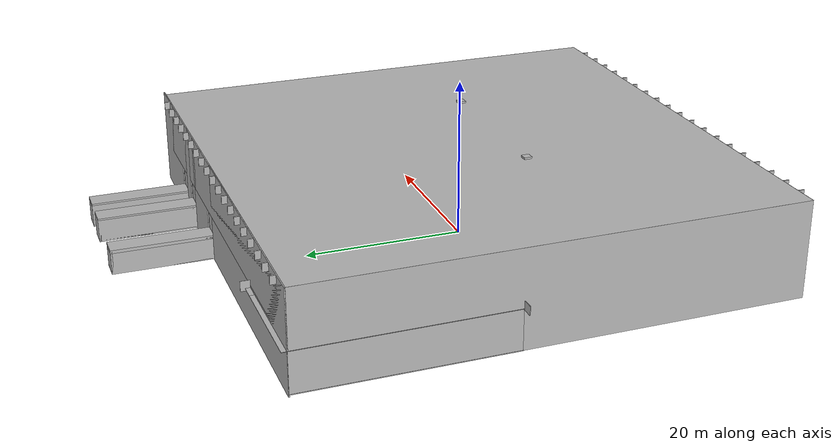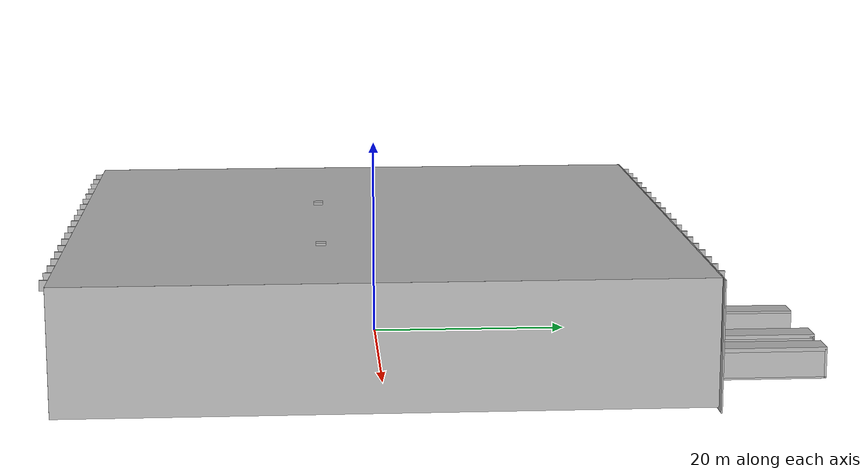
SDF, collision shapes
<?xml version="1.0" ?>
<sdf version="1.6">
    <model name="Distribution_Warehouse">
        <link name="base_link">
            <visual name="base_visual">
                <geometry>
                    <mesh>
                        <uri>base_visual.obj</uri>
                    </mesh>
                </geometry>
            </visual>
            <collision name="cube (5)001_collider_box">
                <pose>13.67 -5.68 5.929999 0.0 0.0 0.0</pose>
                <geometry>
                    <box>
                        <size>1.0 1.0 13.01</size>
                    </box>
                </geometry>
            </collision>
            <collision name="cube (5)_collider_box">
                <pose>-7.57 -5.68 5.929999 0.0 0.0 0.0</pose>
                <geometry>
                    <box>
                        <size>1.0 1.0 13.01</size>
                    </box>
                </geometry>
            </collision>
            <collision name="cube (1)_collider_box">
                <pose>-24.0 17.618946 2.510651 0.0 0.0 0.0</pose>
                <geometry>
                    <box>
                        <size>13.049801 25.872377 5.021302</size>
                    </box>
                </geometry>
            </collision>
            <collision name="cube (4)001_collider_box">
                <pose>-23.040001 4.776191 2.1 0.0 0.0 0.0</pose>
                <geometry>
                    <box>
                        <size>4.705098 0.251252 1.979337</size>
                    </box>
                </geometry>
            </collision>
            <collision name="cube (4)003_collider_box">
                <pose>-27.151514 4.776191 2.1 0.0 0.0 0.0</pose>
                <geometry>
                    <box>
                        <size>1.640517 0.251252 1.979337</size>
                    </box>
                </geometry>
            </collision>
            <collision name="frame_hp001_collider_box">
                <pose>-19.563 4.649602 1.133148 0.0 0.0 0.0</pose>
                <geometry>
                    <box>
                        <size>0.971092 0.093134 2.169982</size>
                    </box>
                </geometry>
            </collision>
            <collision name="cube (1)001_collider_box">
                <pose>-24.0 17.618946 0.043774 0.0 0.0 0.0</pose>
                <geometry>
                    <box>
                        <size>13.106369 25.928946 0.087549</size>
                    </box>
                </geometry>
            </collision>
            <collision name="frame_hp_collider_box">
                <pose>-17.461601 20.076 1.133148 0.0 0.0 0.0</pose>
                <geometry>
                    <box>
                        <size>0.093134 0.971092 2.169983</size>
                    </box>
                </geometry>
            </collision>
            <collision name="cube (4)005_collider_box">
                <pose>-17.563911 24.582869 2.1 0.0 0.0 0.0</pose>
                <geometry>
                    <box>
                        <size>0.251251 4.705097 1.979337</size>
                    </box>
                </geometry>
            </collision>
            <collision name="cube (5)002_collider_box">
                <pose>-15.980897 15.356428 2.327658 0.0 0.0 0.0</pose>
                <geometry>
                    <box>
                        <size>0.693814 0.693814 5.282052</size>
                    </box>
                </geometry>
            </collision>
            <collision name="cube (5)003_collider_box">
                <pose>-15.980897 27.471577 2.327658 0.0 0.0 0.0</pose>
                <geometry>
                    <box>
                        <size>0.693814 0.693814 5.282052</size>
                    </box>
                </geometry>
            </collision>
            <collision name="rafters_collider_box">
                <pose>27.432001 5.9e-05 11.675549 0.0 0.0 0.0</pose>
                <geometry>
                    <box>
                        <size>0.165783 62.56284 0.99057</size>
                    </box>
                </geometry>
            </collision>
            <collision name="rafters001_collider_box">
                <pose>-27.431999 3.5e-05 11.675549 0.0 0.0 0.0</pose>
                <geometry>
                    <box>
                        <size>0.165785 62.562836 0.99057</size>
                    </box>
                </geometry>
            </collision>
            <collision name="rafters002_collider_box">
                <pose>-24.383999 3.6e-05 11.675549 0.0 0.0 0.0</pose>
                <geometry>
                    <box>
                        <size>0.165783 62.56284 0.99057</size>
                    </box>
                </geometry>
            </collision>
            <collision name="rafters003_collider_box">
                <pose>-21.335999 3.8e-05 11.675549 0.0 0.0 0.0</pose>
                <geometry>
                    <box>
                        <size>0.165785 62.56284 0.99057</size>
                    </box>
                </geometry>
            </collision>
            <collision name="rafters004_collider_box">
                <pose>-18.288002 3.6e-05 11.675549 0.0 0.0 0.0</pose>
                <geometry>
                    <box>
                        <size>0.165783 62.562843 0.99057</size>
                    </box>
                </geometry>
            </collision>
            <collision name="rafters005_collider_box">
                <pose>-15.24 3.8e-05 11.675549 0.0 0.0 0.0</pose>
                <geometry>
                    <box>
                        <size>0.165786 62.562843 0.99057</size>
                    </box>
                </geometry>
            </collision>
            <collision name="rafters006_collider_box">
                <pose>-12.192001 4e-05 11.675549 0.0 0.0 0.0</pose>
                <geometry>
                    <box>
                        <size>0.165786 62.562843 0.99057</size>
                    </box>
                </geometry>
            </collision>
            <collision name="rafters007_collider_box">
                <pose>-9.143999 4.3e-05 11.675549 0.0 0.0 0.0</pose>
                <geometry>
                    <box>
                        <size>0.165785 62.562836 0.99057</size>
                    </box>
                </geometry>
            </collision>
            <collision name="rafters008_collider_box">
                <pose>-6.096001 4.5e-05 11.675549 0.0 0.0 0.0</pose>
                <geometry>
                    <box>
                        <size>0.165784 62.562836 0.99057</size>
                    </box>
                </geometry>
            </collision>
            <collision name="rafters009_collider_box">
                <pose>-3.048 4.6e-05 11.675549 0.0 0.0 0.0</pose>
                <geometry>
                    <box>
                        <size>0.165785 62.562836 0.99057</size>
                    </box>
                </geometry>
            </collision>
            <collision name="rafters010_collider_box">
                <pose>-1e-06 4.8e-05 11.675549 0.0 0.0 0.0</pose>
                <geometry>
                    <box>
                        <size>0.165784 62.562836 0.99057</size>
                    </box>
                </geometry>
            </collision>
            <collision name="rafters011_collider_box">
                <pose>3.047999 5e-05 11.675549 0.0 0.0 0.0</pose>
                <geometry>
                    <box>
                        <size>0.165785 62.562836 0.99057</size>
                    </box>
                </geometry>
            </collision>
            <collision name="rafters012_collider_box">
                <pose>6.095998 5e-05 11.675549 0.0 0.0 0.0</pose>
                <geometry>
                    <box>
                        <size>0.165784 62.562836 0.99057</size>
                    </box>
                </geometry>
            </collision>
            <collision name="rafters013_collider_box">
                <pose>9.143999 5.1e-05 11.675549 0.0 0.0 0.0</pose>
                <geometry>
                    <box>
                        <size>0.165785 62.562836 0.99057</size>
                    </box>
                </geometry>
            </collision>
            <collision name="rafters014_collider_box">
                <pose>12.191998 5.3e-05 11.675549 0.0 0.0 0.0</pose>
                <geometry>
                    <box>
                        <size>0.165787 62.56284 0.99057</size>
                    </box>
                </geometry>
            </collision>
            <collision name="rafters015_collider_box">
                <pose>15.239998 5.7e-05 11.675549 0.0 0.0 0.0</pose>
                <geometry>
                    <box>
                        <size>0.165786 62.562843 0.99057</size>
                    </box>
                </geometry>
            </collision>
            <collision name="rafters016_collider_box">
                <pose>18.287998 5.9e-05 11.675549 0.0 0.0 0.0</pose>
                <geometry>
                    <box>
                        <size>0.165783 62.562843 0.99057</size>
                    </box>
                </geometry>
            </collision>
            <collision name="rafters017_collider_box">
                <pose>21.335999 5.7e-05 11.675549 0.0 0.0 0.0</pose>
                <geometry>
                    <box>
                        <size>0.165785 62.56284 0.99057</size>
                    </box>
                </geometry>
            </collision>
            <collision name="rafters018_collider_box">
                <pose>24.384001 5.9e-05 11.675549 0.0 0.0 0.0</pose>
                <geometry>
                    <box>
                        <size>0.165783 62.56284 0.99057</size>
                    </box>
                </geometry>
            </collision>
            <collision name="walls001_collider_box.001">
                <pose>30.48 2e-06 6.096 0.0 0.0 0.0</pose>
                <geometry>
                    <box>
                        <size>0.01 60.960003 12.192019</size>
                    </box>
                </geometry>
            </collision>
            <collision name="walls002_collider_box">
                <pose>0.0 -30.479998 6.096009 0.0 0.0 0.0</pose>
                <geometry>
                    <box>
                        <size>60.959999 0.01 12.191999</size>
                    </box>
                </geometry>
            </collision>
            <collision name="walls_collider_box">
                <pose>-30.48 2e-06 6.096 0.0 0.0 0.0</pose>
                <geometry>
                    <box>
                        <size>0.01 60.960003 12.192019</size>
                    </box>
                </geometry>
            </collision>
            <collision name="slidingdoor 5485_collider_box">
                <pose>-0.000529 30.067745 3.631921 0.0 0.0 0.0</pose>
                <geometry>
                    <box>
                        <size>2.615615 0.800793 0.85331</size>
                    </box>
                </geometry>
            </collision>
            <collision name="slidingdoor 5482_collider_box">
                <pose>1.19452 30.403812 2.923347 0.0 0.0 0.0</pose>
                <geometry>
                    <box>
                        <size>0.13896 0.171846 5.852485</size>
                    </box>
                </geometry>
            </collision>
            <collision name="slidingdoor 5482_collider_box.001">
                <pose>-1.196062 30.403812 2.923347 0.0 0.0 0.0</pose>
                <geometry>
                    <box>
                        <size>0.13896 0.171846 5.852485</size>
                    </box>
                </geometry>
            </collision>
            <collision name="slidingdoor 5482_collider_box.002">
                <pose>0.0 30.444313 1.387489 0.0 0.0 0.0</pose>
                <geometry>
                    <box>
                        <size>2.4384 0.062555 2.774978</size>
                    </box>
                </geometry>
            </collision>
            <collision name="slidingdoor 5485_collider_box.001">
                <pose>9.751661 30.067745 3.631921 0.0 0.0 0.0</pose>
                <geometry>
                    <box>
                        <size>2.615615 0.800793 0.85331</size>
                    </box>
                </geometry>
            </collision>
            <collision name="slidingdoor 5482_collider_box.003">
                <pose>10.946712 30.403812 2.923347 0.0 0.0 0.0</pose>
                <geometry>
                    <box>
                        <size>0.13896 0.171846 5.852485</size>
                    </box>
                </geometry>
            </collision>
            <collision name="slidingdoor 5482_collider_box.004">
                <pose>8.556129 30.403812 2.923347 0.0 0.0 0.0</pose>
                <geometry>
                    <box>
                        <size>0.13896 0.171846 5.852485</size>
                    </box>
                </geometry>
            </collision>
            <collision name="slidingdoor 5482_collider_box.005">
                <pose>9.752191 30.444313 1.387489 0.0 0.0 0.0</pose>
                <geometry>
                    <box>
                        <size>2.4384 0.062555 2.774978</size>
                    </box>
                </geometry>
            </collision>
            <collision name="slidingdoor 5485_collider_box.002">
                <pose>24.371634 30.067745 3.631921 0.0 0.0 0.0</pose>
                <geometry>
                    <box>
                        <size>2.615615 0.800793 0.85331</size>
                    </box>
                </geometry>
            </collision>
            <collision name="slidingdoor 5482_collider_box.006">
                <pose>25.566683 30.403812 2.923347 0.0 0.0 0.0</pose>
                <geometry>
                    <box>
                        <size>0.13896 0.171846 5.852485</size>
                    </box>
                </geometry>
            </collision>
            <collision name="slidingdoor 5482_collider_box.007">
                <pose>23.176102 30.403812 2.923347 0.0 0.0 0.0</pose>
                <geometry>
                    <box>
                        <size>0.13896 0.171846 5.852485</size>
                    </box>
                </geometry>
            </collision>
            <collision name="slidingdoor 5482_collider_box.008">
                <pose>24.372164 30.444313 1.387489 0.0 0.0 0.0</pose>
                <geometry>
                    <box>
                        <size>2.4384 0.062555 2.774978</size>
                    </box>
                </geometry>
            </collision>
            <collision name="slidingdoor 5485_collider_box.003">
                <pose>19.509531 30.067745 3.631921 0.0 0.0 0.0</pose>
                <geometry>
                    <box>
                        <size>2.615615 0.800793 0.85331</size>
                    </box>
                </geometry>
            </collision>
            <collision name="slidingdoor 5482_collider_box.009">
                <pose>20.70458 30.403812 2.923347 0.0 0.0 0.0</pose>
                <geometry>
                    <box>
                        <size>0.13896 0.171846 5.852485</size>
                    </box>
                </geometry>
            </collision>
            <collision name="slidingdoor 5482_collider_box.010">
                <pose>18.313999 30.403812 2.923347 0.0 0.0 0.0</pose>
                <geometry>
                    <box>
                        <size>0.13896 0.171846 5.852485</size>
                    </box>
                </geometry>
            </collision>
            <collision name="slidingdoor 5482_collider_box.011">
                <pose>19.510061 30.444313 4.184203 0.0 0.0 0.0</pose>
                <geometry>
                    <box>
                        <size>2.4384 0.062555 2.774978</size>
                    </box>
                </geometry>
            </collision>
            <collision name="slidingdoor 5485_collider_box.004">
                <pose>14.630073 30.067745 3.631921 0.0 0.0 0.0</pose>
                <geometry>
                    <box>
                        <size>2.615615 0.800793 0.85331</size>
                    </box>
                </geometry>
            </collision>
            <collision name="slidingdoor 5482_collider_box.012">
                <pose>15.825122 30.403812 2.923347 0.0 0.0 0.0</pose>
                <geometry>
                    <box>
                        <size>0.13896 0.171846 5.852485</size>
                    </box>
                </geometry>
            </collision>
            <collision name="slidingdoor 5482_collider_box.013">
                <pose>13.434541 30.403812 2.923347 0.0 0.0 0.0</pose>
                <geometry>
                    <box>
                        <size>0.13896 0.171846 5.852485</size>
                    </box>
                </geometry>
            </collision>
            <collision name="slidingdoor 5482_collider_box.014">
                <pose>14.630603 30.444313 4.184203 0.0 0.0 0.0</pose>
                <geometry>
                    <box>
                        <size>2.4384 0.062555 2.774978</size>
                    </box>
                </geometry>
            </collision>
            <collision name="slidingdoor 5485_collider_box.005">
                <pose>4.877446 30.067745 3.631921 0.0 0.0 0.0</pose>
                <geometry>
                    <box>
                        <size>2.615615 0.800793 0.85331</size>
                    </box>
                </geometry>
            </collision>
            <collision name="slidingdoor 5482_collider_box.015">
                <pose>6.072495 30.403812 2.923347 0.0 0.0 0.0</pose>
                <geometry>
                    <box>
                        <size>0.13896 0.171846 5.852485</size>
                    </box>
                </geometry>
            </collision>
            <collision name="slidingdoor 5482_collider_box.016">
                <pose>3.681914 30.403812 2.923347 0.0 0.0 0.0</pose>
                <geometry>
                    <box>
                        <size>0.13896 0.171846 5.852485</size>
                    </box>
                </geometry>
            </collision>
            <collision name="slidingdoor 5482_collider_box.017">
                <pose>4.877976 30.444313 4.184203 0.0 0.0 0.0</pose>
                <geometry>
                    <box>
                        <size>2.4384 0.062555 2.774978</size>
                    </box>
                </geometry>
            </collision>
            <collision name="container001001_collider_box">
                <pose>3.651515 36.745579 1.274999 0.0 0.0 0.0</pose>
                <geometry>
                    <box>
                        <size>0.160527 12.477701 2.896004</size>
                    </box>
                </geometry>
            </collision>
            <collision name="container001001_collider_box.001">
                <pose>6.102085 36.745579 1.274999 0.0 0.0 0.0</pose>
                <geometry>
                    <box>
                        <size>0.160527 12.477701 2.896004</size>
                    </box>
                </geometry>
            </collision>
            <collision name="container001001_collider_box.002">
                <pose>4.8768 36.888428 -0.087001 0.0 0.0 0.0</pose>
                <geometry>
                    <box>
                        <size>2.611096 12.192007 0.172003</size>
                    </box>
                </geometry>
            </collision>
            <collision name="container001001_collider_box.003">
                <pose>4.8768 36.730724 2.744853 0.0 0.0 0.0</pose>
                <geometry>
                    <box>
                        <size>2.611096 12.507417 0.401707</size>
                    </box>
                </geometry>
            </collision>
            <collision name="ramp 4001_collider_box">
                <pose>4.8768 29.091019 -0.044212 0.013963 -0.0 0.0</pose>
                <geometry>
                    <box>
                        <size>2.153553 3.077521 0.122</size>
                    </box>
                </geometry>
            </collision>
            <collision name="ramp 4001_collider_box.001">
                <pose>4.8768 31.077013 -0.051979 -0.058494 -0.0 0.0</pose>
                <geometry>
                    <box>
                        <size>2.153553 0.921423 0.122</size>
                    </box>
                </geometry>
            </collision>
            <collision name="container001001_collider_box.004">
                <pose>4.8768 42.873322 1.274999 0.0 0.0 0.0</pose>
                <geometry>
                    <box>
                        <size>2.611096 0.222218 2.896004</size>
                    </box>
                </geometry>
            </collision>
            <collision name="container001001_collider_box.005">
                <pose>13.375796 36.745579 1.274999 0.0 0.0 0.0</pose>
                <geometry>
                    <box>
                        <size>0.160527 12.477701 2.896004</size>
                    </box>
                </geometry>
            </collision>
            <collision name="container001001_collider_box.006">
                <pose>15.826365 36.745579 1.274999 0.0 0.0 0.0</pose>
                <geometry>
                    <box>
                        <size>0.160527 12.477701 2.896004</size>
                    </box>
                </geometry>
            </collision>
            <collision name="container001001_collider_box.007">
                <pose>14.601083 36.888428 -0.087001 0.0 0.0 0.0</pose>
                <geometry>
                    <box>
                        <size>2.611096 12.192007 0.172003</size>
                    </box>
                </geometry>
            </collision>
            <collision name="container001001_collider_box.008">
                <pose>14.601083 36.730724 2.744853 0.0 0.0 0.0</pose>
                <geometry>
                    <box>
                        <size>2.611096 12.507417 0.401707</size>
                    </box>
                </geometry>
            </collision>
            <collision name="ramp 4001_collider_box.002">
                <pose>14.601083 29.091019 -0.044212 0.013963 -0.0 0.0</pose>
                <geometry>
                    <box>
                        <size>2.153553 3.077521 0.122</size>
                    </box>
                </geometry>
            </collision>
            <collision name="ramp 4001_collider_box.003">
                <pose>14.601083 31.077013 -0.051979 -0.058494 -0.0 0.0</pose>
                <geometry>
                    <box>
                        <size>2.153553 0.921423 0.122</size>
                    </box>
                </geometry>
            </collision>
            <collision name="container001001_collider_box.009">
                <pose>14.601083 42.873322 1.274999 0.0 0.0 0.0</pose>
                <geometry>
                    <box>
                        <size>2.611096 0.222218 2.896004</size>
                    </box>
                </geometry>
            </collision>
            <collision name="slidingdoor 5485_collider_box.006">
                <pose>19.564995 30.067745 3.631921 0.0 0.0 0.0</pose>
                <geometry>
                    <box>
                        <size>2.615615 0.800793 0.85331</size>
                    </box>
                </geometry>
            </collision>
            <collision name="slidingdoor 5482_collider_box.018">
                <pose>20.760044 30.403812 2.923347 0.0 0.0 0.0</pose>
                <geometry>
                    <box>
                        <size>0.13896 0.171846 5.852485</size>
                    </box>
                </geometry>
            </collision>
            <collision name="slidingdoor 5482_collider_box.019">
                <pose>18.369465 30.403812 2.923347 0.0 0.0 0.0</pose>
                <geometry>
                    <box>
                        <size>0.13896 0.171846 5.852485</size>
                    </box>
                </geometry>
            </collision>
            <collision name="slidingdoor 5482_collider_box.020">
                <pose>19.565525 30.444313 4.184203 0.0 0.0 0.0</pose>
                <geometry>
                    <box>
                        <size>2.4384 0.062555 2.774978</size>
                    </box>
                </geometry>
            </collision>
            <collision name="container001001_collider_box.010">
                <pose>18.310719 36.745579 1.274999 0.0 0.0 0.0</pose>
                <geometry>
                    <box>
                        <size>0.160527 12.477701 2.896004</size>
                    </box>
                </geometry>
            </collision>
            <collision name="container001001_collider_box.011">
                <pose>20.761288 36.745579 1.274999 0.0 0.0 0.0</pose>
                <geometry>
                    <box>
                        <size>0.160527 12.477701 2.896004</size>
                    </box>
                </geometry>
            </collision>
            <collision name="container001001_collider_box.012">
                <pose>19.536007 36.888428 -0.087001 0.0 0.0 0.0</pose>
                <geometry>
                    <box>
                        <size>2.611096 12.192007 0.172003</size>
                    </box>
                </geometry>
            </collision>
            <collision name="container001001_collider_box.013">
                <pose>19.536007 36.730724 2.744853 0.0 0.0 0.0</pose>
                <geometry>
                    <box>
                        <size>2.611096 12.507417 0.401707</size>
                    </box>
                </geometry>
            </collision>
            <collision name="ramp 4001_collider_box.004">
                <pose>19.536007 29.091019 -0.044212 0.013963 -0.0 0.0</pose>
                <geometry>
                    <box>
                        <size>2.153553 3.077521 0.122</size>
                    </box>
                </geometry>
            </collision>
            <collision name="ramp 4001_collider_box.005">
                <pose>19.536007 31.077013 -0.051979 -0.058494 -0.0 0.0</pose>
                <geometry>
                    <box>
                        <size>2.153553 0.921423 0.122</size>
                    </box>
                </geometry>
            </collision>
            <collision name="container001001_collider_box.014">
                <pose>19.536007 42.873322 1.274999 0.0 0.0 0.0</pose>
                <geometry>
                    <box>
                        <size>2.611096 0.222218 2.896004</size>
                    </box>
                </geometry>
            </collision>
            <collision name="floor002_collider_box">
                <pose>0.0 0.0 0.0 0.0 0.0 0.0</pose>
                <geometry>
                    <box>
                        <size>60.959999 60.959999 1.8e-05</size>
                    </box>
                </geometry>
            </collision>
            <collision name="stairsmetal002_collider_box">
                <pose>-17.423519 8.967621 5.437622 0.0 0.0 0.0</pose>
                <geometry>
                    <box>
                        <size>0.061687 8.759787 1.120139</size>
                    </box>
                </geometry>
            </collision>
            <collision name="stairsmetal (1)004_collider_box">
                <pose>-24.647566 4.609578 5.437623 0.0 0.0 0.0</pose>
                <geometry>
                    <box>
                        <size>14.396378 0.061687 1.120139</size>
                    </box>
                </geometry>
            </collision>
            <collision name="stairsmetal002_collider_box.001">
                <pose>-15.567365 22.503052 5.375848 0.0 0.0 0.0</pose>
                <geometry>
                    <box>
                        <size>0.05726 18.476784 1.243688</size>
                    </box>
                </geometry>
            </collision>
            <collision name="stairsmetal003_collider_box">
                <pose>-16.5 7.908711 0.101603 0.0 0.0 0.0</pose>
                <geometry>
                    <box>
                        <size>1.799999 5.725052 5.080006</size>
                    </box>
                </geometry>
            </collision>
            <collision name="stairsmetal002_collider_box.002">
                <pose>-15.570251 10.697059 3.102405 0.726581 -0.0 0.0</pose>
                <geometry>
                    <box>
                        <size>0.063033 7.635524 0.888999</size>
                    </box>
                </geometry>
            </collision>
            <collision name="stairsmetal002_collider_box.003">
                <pose>-15.570251 7.842681 0.385799 0.0 -0.0 0.0</pose>
                <geometry>
                    <box>
                        <size>0.063033 0.59361 1.053576</size>
                    </box>
                </geometry>
            </collision>
            <collision name="stairsmetal002_collider_box.004">
                <pose>-17.426073 10.697059 3.102405 0.726581 -0.0 0.0</pose>
                <geometry>
                    <box>
                        <size>0.063033 7.635524 0.888999</size>
                    </box>
                </geometry>
            </collision>
            <collision name="stairsmetal002_collider_box.005">
                <pose>-17.426073 7.842681 0.385799 0.0 -0.0 0.0</pose>
                <geometry>
                    <box>
                        <size>0.063033 0.59361 1.053576</size>
                    </box>
                </geometry>
            </collision>
            <collision name="floor002_collider_box.001">
                <pose>-23.985769 17.944378 5.052156 0.0 0.0 0.0</pose>
                <geometry>
                    <box>
                        <size>13.078262 26.523245 0.048153</size>
                    </box>
                </geometry>
            </collision>
            <collision name="floor002_collider_box.002">
                <pose>-23.065382 22.351646 5.048767 0.0 0.0 0.0</pose>
                <geometry>
                    <box>
                        <size>14.919037 17.708706 0.05493</size>
                    </box>
                </geometry>
            </collision>
            <collision name="walls001_collider_box">
                <pose>-13.425142 30.548428 5.956895 0.0 0.0 0.0</pose>
                <geometry>
                    <box>
                        <size>34.109718 0.136858 12.470209</size>
                    </box>
                </geometry>
            </collision>
            <collision name="walls001_collider_box.002">
                <pose>9.781928 30.548428 5.956895 0.0 0.0 0.0</pose>
                <geometry>
                    <box>
                        <size>7.277754 0.136858 12.470209</size>
                    </box>
                </geometry>
            </collision>
            <collision name="walls001_collider_box.004">
                <pose>26.132429 30.548428 5.956895 0.0 0.0 0.0</pose>
                <geometry>
                    <box>
                        <size>10.66654 0.136858 12.470209</size>
                    </box>
                </geometry>
            </collision>
            <collision name="walls001_collider_box.005">
                <pose>17.078478 30.548428 5.956895 0.0 0.0 0.0</pose>
                <geometry>
                    <box>
                        <size>2.427765 0.136858 12.470209</size>
                    </box>
                </geometry>
            </collision>
            <collision name="walls001_collider_box.003">
                <pose>0.127078 30.548428 8.765667 0.0 0.0 0.0</pose>
                <geometry>
                    <box>
                        <size>61.214157 0.136858 6.852665</size>
                    </box>
                </geometry>
            </collision>
            <collision name="light_lp001_collider_box">
                <pose>0.0 0.0 11.077731 0.0 0.0 0.0</pose>
                <geometry>
                    <box>
                        <size>0.385652 1.859864 0.146982</size>
                    </box>
                </geometry>
            </collision>
            <collision name="light_lp003_collider_box">
                <pose>0.0 25.0 11.077731 0.0 0.0 0.0</pose>
                <geometry>
                    <box>
                        <size>0.385652 1.859863 0.146982</size>
                    </box>
                </geometry>
            </collision>
            <collision name="light_lp005_collider_box">
                <pose>0.0 12.5 11.077731 0.0 0.0 0.0</pose>
                <geometry>
                    <box>
                        <size>0.385652 1.859863 0.146982</size>
                    </box>
                </geometry>
            </collision>
            <collision name="light_lp007_collider_box">
                <pose>0.0 -12.5 11.077731 0.0 0.0 0.0</pose>
                <geometry>
                    <box>
                        <size>0.385652 1.859863 0.146982</size>
                    </box>
                </geometry>
            </collision>
            <collision name="light_lp009_collider_box">
                <pose>0.0 -25.0 11.077731 0.0 0.0 0.0</pose>
                <geometry>
                    <box>
                        <size>0.385652 1.859863 0.146982</size>
                    </box>
                </geometry>
            </collision>
            <collision name="light_lp011_collider_box">
                <pose>-6.099999 0.0 11.077731 0.0 0.0 0.0</pose>
                <geometry>
                    <box>
                        <size>0.385652 1.859864 0.146982</size>
                    </box>
                </geometry>
            </collision>
            <collision name="light_lp013_collider_box">
                <pose>-6.099999 25.0 11.077731 0.0 0.0 0.0</pose>
                <geometry>
                    <box>
                        <size>0.385652 1.859863 0.146982</size>
                    </box>
                </geometry>
            </collision>
            <collision name="light_lp015_collider_box">
                <pose>-6.099999 12.5 11.077731 0.0 0.0 0.0</pose>
                <geometry>
                    <box>
                        <size>0.385652 1.859863 0.146982</size>
                    </box>
                </geometry>
            </collision>
            <collision name="light_lp017_collider_box">
                <pose>-6.099999 -12.5 11.077731 0.0 0.0 0.0</pose>
                <geometry>
                    <box>
                        <size>0.385652 1.859863 0.146982</size>
                    </box>
                </geometry>
            </collision>
            <collision name="light_lp019_collider_box">
                <pose>-6.099999 -25.0 11.077731 0.0 0.0 0.0</pose>
                <geometry>
                    <box>
                        <size>0.385652 1.859863 0.146982</size>
                    </box>
                </geometry>
            </collision>
            <collision name="light_lp021_collider_box">
                <pose>-12.2 0.0 11.077731 0.0 0.0 0.0</pose>
                <geometry>
                    <box>
                        <size>0.385653 1.859864 0.146982</size>
                    </box>
                </geometry>
            </collision>
            <collision name="light_lp023_collider_box">
                <pose>-12.2 25.0 11.077731 0.0 0.0 0.0</pose>
                <geometry>
                    <box>
                        <size>0.385653 1.859863 0.146982</size>
                    </box>
                </geometry>
            </collision>
            <collision name="light_lp025_collider_box">
                <pose>-12.2 12.5 11.077731 0.0 0.0 0.0</pose>
                <geometry>
                    <box>
                        <size>0.385653 1.859863 0.146982</size>
                    </box>
                </geometry>
            </collision>
            <collision name="light_lp027_collider_box">
                <pose>-12.2 -12.5 11.077731 0.0 0.0 0.0</pose>
                <geometry>
                    <box>
                        <size>0.385653 1.859863 0.146982</size>
                    </box>
                </geometry>
            </collision>
            <collision name="light_lp029_collider_box">
                <pose>-12.2 -25.0 11.077731 0.0 0.0 0.0</pose>
                <geometry>
                    <box>
                        <size>0.385653 1.859863 0.146982</size>
                    </box>
                </geometry>
            </collision>
            <collision name="light_lp031_collider_box">
                <pose>-18.279999 0.0 11.077731 0.0 0.0 0.0</pose>
                <geometry>
                    <box>
                        <size>0.385651 1.859864 0.146982</size>
                    </box>
                </geometry>
            </collision>
            <collision name="light_lp033_collider_box">
                <pose>-18.279999 25.0 11.077731 0.0 0.0 0.0</pose>
                <geometry>
                    <box>
                        <size>0.385651 1.859863 0.146982</size>
                    </box>
                </geometry>
            </collision>
            <collision name="light_lp035_collider_box">
                <pose>-18.279999 12.5 11.077731 0.0 0.0 0.0</pose>
                <geometry>
                    <box>
                        <size>0.385651 1.859863 0.146982</size>
                    </box>
                </geometry>
            </collision>
            <collision name="light_lp037_collider_box">
                <pose>-18.279999 -12.5 11.077731 0.0 0.0 0.0</pose>
                <geometry>
                    <box>
                        <size>0.385651 1.859863 0.146982</size>
                    </box>
                </geometry>
            </collision>
            <collision name="light_lp039_collider_box">
                <pose>-18.279999 -25.0 11.077731 0.0 0.0 0.0</pose>
                <geometry>
                    <box>
                        <size>0.385651 1.859863 0.146982</size>
                    </box>
                </geometry>
            </collision>
            <collision name="light_lp041_collider_box">
                <pose>-24.360001 0.0 11.077731 0.0 0.0 0.0</pose>
                <geometry>
                    <box>
                        <size>0.385651 1.859864 0.146982</size>
                    </box>
                </geometry>
            </collision>
            <collision name="light_lp043_collider_box">
                <pose>-24.360001 25.0 11.077731 0.0 0.0 0.0</pose>
                <geometry>
                    <box>
                        <size>0.385651 1.859863 0.146982</size>
                    </box>
                </geometry>
            </collision>
            <collision name="light_lp045_collider_box">
                <pose>-24.360001 12.5 11.077731 0.0 0.0 0.0</pose>
                <geometry>
                    <box>
                        <size>0.385651 1.859863 0.146982</size>
                    </box>
                </geometry>
            </collision>
            <collision name="light_lp047_collider_box">
                <pose>-24.360001 -12.5 11.077731 0.0 0.0 0.0</pose>
                <geometry>
                    <box>
                        <size>0.385651 1.859863 0.146982</size>
                    </box>
                </geometry>
            </collision>
            <collision name="light_lp049_collider_box">
                <pose>-24.360001 -25.0 11.077731 0.0 0.0 0.0</pose>
                <geometry>
                    <box>
                        <size>0.385651 1.859863 0.146982</size>
                    </box>
                </geometry>
            </collision>
            <collision name="light_lp051_collider_box">
                <pose>6.08 0.0 11.077731 0.0 0.0 0.0</pose>
                <geometry>
                    <box>
                        <size>0.385652 1.859864 0.146982</size>
                    </box>
                </geometry>
            </collision>
            <collision name="light_lp053_collider_box">
                <pose>6.08 25.0 11.077731 0.0 0.0 0.0</pose>
                <geometry>
                    <box>
                        <size>0.385652 1.859863 0.146982</size>
                    </box>
                </geometry>
            </collision>
            <collision name="light_lp055_collider_box">
                <pose>6.08 12.5 11.077731 0.0 0.0 0.0</pose>
                <geometry>
                    <box>
                        <size>0.385652 1.859863 0.146982</size>
                    </box>
                </geometry>
            </collision>
            <collision name="light_lp057_collider_box">
                <pose>6.08 -12.5 11.077731 0.0 0.0 0.0</pose>
                <geometry>
                    <box>
                        <size>0.385652 1.859863 0.146982</size>
                    </box>
                </geometry>
            </collision>
            <collision name="light_lp059_collider_box">
                <pose>6.08 -25.0 11.077731 0.0 0.0 0.0</pose>
                <geometry>
                    <box>
                        <size>0.385652 1.859863 0.146982</size>
                    </box>
                </geometry>
            </collision>
            <collision name="light_lp061_collider_box">
                <pose>12.18 0.0 11.077731 0.0 0.0 0.0</pose>
                <geometry>
                    <box>
                        <size>0.385653 1.859864 0.146982</size>
                    </box>
                </geometry>
            </collision>
            <collision name="light_lp063_collider_box">
                <pose>12.18 25.0 11.077731 0.0 0.0 0.0</pose>
                <geometry>
                    <box>
                        <size>0.385653 1.859863 0.146982</size>
                    </box>
                </geometry>
            </collision>
            <collision name="light_lp065_collider_box">
                <pose>12.18 12.5 11.077731 0.0 0.0 0.0</pose>
                <geometry>
                    <box>
                        <size>0.385653 1.859863 0.146982</size>
                    </box>
                </geometry>
            </collision>
            <collision name="light_lp067_collider_box">
                <pose>12.18 -12.5 11.077731 0.0 0.0 0.0</pose>
                <geometry>
                    <box>
                        <size>0.385653 1.859863 0.146982</size>
                    </box>
                </geometry>
            </collision>
            <collision name="light_lp069_collider_box">
                <pose>12.18 -25.0 11.077731 0.0 0.0 0.0</pose>
                <geometry>
                    <box>
                        <size>0.385653 1.859863 0.146982</size>
                    </box>
                </geometry>
            </collision>
            <collision name="light_lp071_collider_box">
                <pose>18.33 0.0 11.077731 0.0 0.0 0.0</pose>
                <geometry>
                    <box>
                        <size>0.385651 1.859864 0.146982</size>
                    </box>
                </geometry>
            </collision>
            <collision name="light_lp073_collider_box">
                <pose>18.33 25.0 11.077731 0.0 0.0 0.0</pose>
                <geometry>
                    <box>
                        <size>0.385651 1.859863 0.146982</size>
                    </box>
                </geometry>
            </collision>
            <collision name="light_lp075_collider_box">
                <pose>18.33 12.5 11.077731 0.0 0.0 0.0</pose>
                <geometry>
                    <box>
                        <size>0.385651 1.859863 0.146982</size>
                    </box>
                </geometry>
            </collision>
            <collision name="light_lp077_collider_box">
                <pose>18.33 -12.5 11.077731 0.0 0.0 0.0</pose>
                <geometry>
                    <box>
                        <size>0.385651 1.859863 0.146982</size>
                    </box>
                </geometry>
            </collision>
            <collision name="light_lp079_collider_box">
                <pose>18.33 -25.0 11.077731 0.0 0.0 0.0</pose>
                <geometry>
                    <box>
                        <size>0.385651 1.859863 0.146982</size>
                    </box>
                </geometry>
            </collision>
            <collision name="light_lp081_collider_box">
                <pose>24.360001 0.0 11.077731 0.0 0.0 0.0</pose>
                <geometry>
                    <box>
                        <size>0.385651 1.859864 0.146982</size>
                    </box>
                </geometry>
            </collision>
            <collision name="light_lp083_collider_box">
                <pose>24.360001 25.0 11.077731 0.0 0.0 0.0</pose>
                <geometry>
                    <box>
                        <size>0.385651 1.859863 0.146982</size>
                    </box>
                </geometry>
            </collision>
            <collision name="light_lp085_collider_box">
                <pose>24.360001 12.5 11.077731 0.0 0.0 0.0</pose>
                <geometry>
                    <box>
                        <size>0.385651 1.859863 0.146982</size>
                    </box>
                </geometry>
            </collision>
            <collision name="light_lp087_collider_box">
                <pose>24.360001 -12.5 11.077731 0.0 0.0 0.0</pose>
                <geometry>
                    <box>
                        <size>0.385651 1.859863 0.146982</size>
                    </box>
                </geometry>
            </collision>
            <collision name="light_lp089_collider_box">
                <pose>24.360001 -25.0 11.077731 0.0 0.0 0.0</pose>
                <geometry>
                    <box>
                        <size>0.385651 1.859863 0.146982</size>
                    </box>
                </geometry>
            </collision>
            <collision name="ceiling_collider_box">
                <pose>0.0 4e-06 12.191999 0.0 0.0 0.0</pose>
                <geometry>
                    <box>
                        <size>60.960007 60.960003 1.9e-05</size>
                    </box>
                </geometry>
            </collision>
        </link>
    </model>
</sdf>
